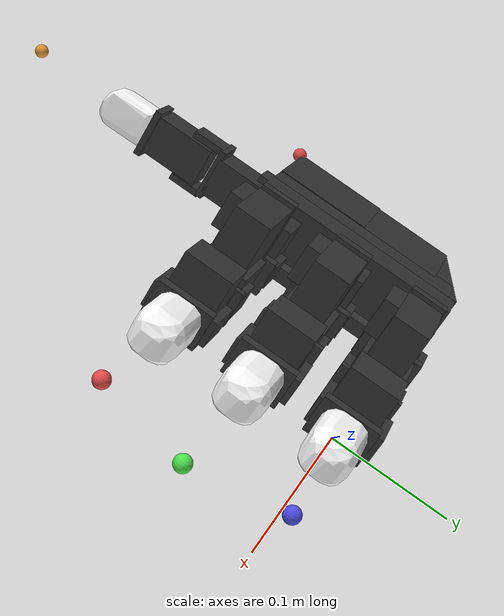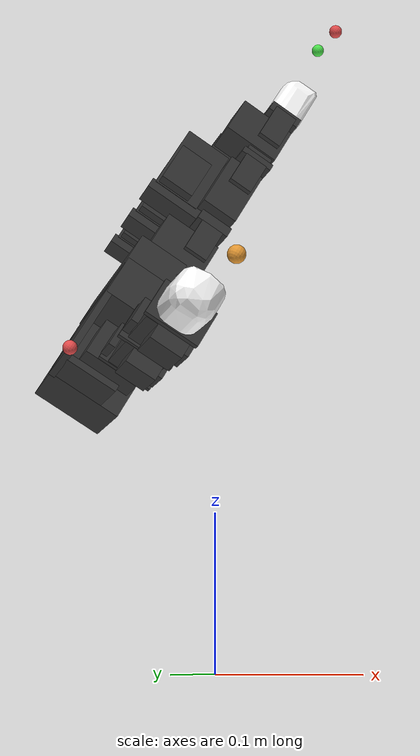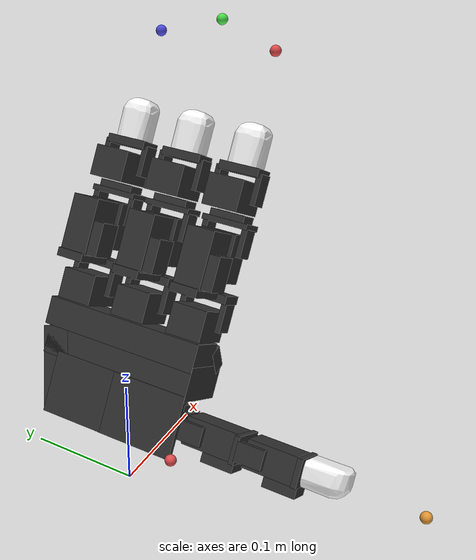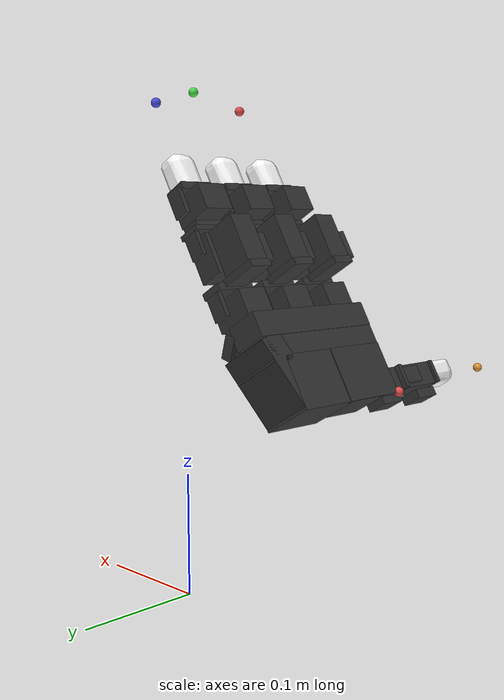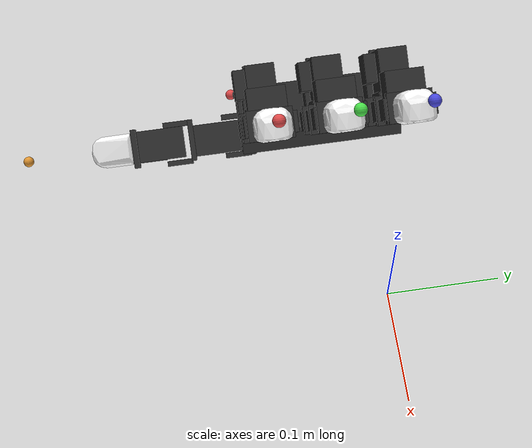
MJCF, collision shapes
<mujoco model="leap_lh">
  <compiler angle="radian" meshdir="./assets/" autolimits="true"/>

  <asset>
    <material name="black" rgba="0.2 0.2 0.2 1"/>
    <material name="white" rgba="1 1 1 1"/>

    <mesh name="palm" file="palm_left.obj"/>
    <mesh name="base" file="base.obj"/>
    <mesh name="proximal" file="proximal.obj"/>
    <mesh name="medial" file="medial.obj"/>
    <mesh name="distal" file="distal.obj"/>
    <mesh name="tip" file="tip.obj"/>
    <mesh name="thumb_mp_left" file="thumb_mp_left.obj"/>
    <mesh name="thumb_base" file="thumb_base.obj"/>
    <mesh name="thumb_proximal" file="thumb_proximal.obj"/>
    <mesh name="thumb_distal" file="thumb_distal.obj"/>
    <mesh name="thumb_tip" file="thumb_tip.obj"/>
  </asset>

  <!-- defaults -->
  <default>
    <!-- constraint stiffness -->
    <geom friction=".2"/>

    <!-- actuator defaults -->
    <motor ctrlrange="-10 10"/>
    <joint damping="0.001" armature="0.0048" frictionloss="0.006"/>

    <!-- geom class defaults -->
    <default class="visual">
      <geom group="2" type="mesh" contype="0" conaffinity="0" density="0" material="black"/>
    </default>
    <default class="collision">
      <geom group="3" material="black"/>
    </default>
    <default class="tip">
      <geom type="mesh" mesh="tip" friction="0.5" material="white"/>
    </default>
    <default class="thumb_tip">
      <geom type="mesh" mesh="thumb_tip" friction="0.5" material="white"/>
    </default>

    <!-- joint class defaults -->
    <default class="mcp">
      <joint pos="0 0 0" axis="0 0 -1" limited="true" range="-0.314 2.23"/>
    </default>
    <default class="rot">
      <joint pos="0 0 0" axis="0 0 -1" limited="true" range="-1.047 1.047"/>
    </default>
    <default class="pip">
      <joint pos="0 0 0" axis="0 0 -1" limited="true" range="0.0 1.885"/>
    </default>
    <default class="dip">
      <joint pos="0 0 0" axis="0 0 -1" limited="true" range="0.0 2.042"/>
    </default>
    <default class="thumb_cmc">
      <joint pos="0 0 0" axis="0 0 -1" limited="true" range="-2.094 0.349"/>
    </default>
    <default class="thumb_axl">
      <joint pos="0 0 0" axis="0 0 -1" limited="true" range="-2.094 0.349"/>
    </default>
    <default class="thumb_mcp">
      <joint pos="0 0 0" axis="0 0 -1" limited="true" range="-1.22 2.443"/>
    </default>
    <default class="thumb_ipl">
      <joint pos="0 0 0" axis="0 0 -1" limited="true" range="-1.34 1.88"/>
    </default>
  </default>

  <!-- collision filtering -->
  <contact>
    <!-- filter the palm from all other finger bodies except the tips -->
    <exclude body1="palm" body2="if_bs"/>
    <exclude body1="palm" body2="mf_bs"/>
    <exclude body1="palm" body2="rf_bs"/>
    <exclude body1="palm" body2="th_mp"/>

    <exclude body1="palm" body2="if_px"/>
    <exclude body1="palm" body2="mf_px"/>
    <exclude body1="palm" body2="rf_px"/>
    <exclude body1="palm" body2="th_bs"/>

    <exclude body1="palm" body2="if_md"/>
    <exclude body1="palm" body2="mf_md"/>
    <exclude body1="palm" body2="rf_md"/>
    <exclude body1="palm" body2="th_px"/>

    <!-- none of the base fingertip geoms can touch each other -->
    <exclude body1="if_bs" body2="mf_bs"/>
    <exclude body1="if_bs" body2="rf_bs"/>
    <exclude body1="mf_bs" body2="rf_bs"/>

    <exclude body1="th_mp" body2="if_bs"/>
    <exclude body1="th_mp" body2="mf_bs"/>
    <exclude body1="th_mp" body2="rf_bs"/>
  </contact>

  <!-- actuators -->
  <actuator>
    <!-- index -->
    <motor name="if_rot_act" joint="if_rot"/>
    <motor name="if_mcp_act" joint="if_mcp"/>
    <motor name="if_pip_act" joint="if_pip"/>
    <motor name="if_dip_act" joint="if_dip"/>

    <!-- middle -->
    <motor name="mf_rot_act" joint="mf_rot"/>
    <motor name="mf_mcp_act" joint="mf_mcp"/>
    <motor name="mf_pip_act" joint="mf_pip"/>
    <motor name="mf_dip_act" joint="mf_dip"/>

    <!-- ring -->
    <motor name="rf_rot_act" joint="rf_rot"/>
    <motor name="rf_mcp_act" joint="rf_mcp"/>
    <motor name="rf_pip_act" joint="rf_pip"/>
    <motor name="rf_dip_act" joint="rf_dip"/>

    <!-- thumb -->
    <motor name="th_cmc_act" joint="th_cmc"/>
    <motor name="th_axl_act" joint="th_axl"/>
    <motor name="th_mcp_act" joint="th_mcp"/>
    <motor name="th_ipl_act" joint="th_ipl"/>
  </actuator>

  <!-- sensors -->
  <sensor>
    <!-- index -->
    <jointpos name="if_mcp_sensor" joint="if_mcp"/>
    <jointpos name="if_rot_sensor" joint="if_rot"/>
    <jointpos name="if_pip_sensor" joint="if_pip"/>
    <jointpos name="if_dip_sensor" joint="if_dip"/>

    <!-- middle -->
    <jointpos name="mf_mcp_sensor" joint="mf_mcp"/>
    <jointpos name="mf_rot_sensor" joint="mf_rot"/>
    <jointpos name="mf_pip_sensor" joint="mf_pip"/>
    <jointpos name="mf_dip_sensor" joint="mf_dip"/>

    <!-- ring -->
    <jointpos name="rf_mcp_sensor" joint="rf_mcp"/>
    <jointpos name="rf_rot_sensor" joint="rf_rot"/>
    <jointpos name="rf_pip_sensor" joint="rf_pip"/>
    <jointpos name="rf_dip_sensor" joint="rf_dip"/>

    <!-- thumb -->
    <jointpos name="th_cmc_sensor" joint="th_cmc"/>
    <jointpos name="th_axl_sensor" joint="th_axl"/>
    <jointpos name="th_mcp_sensor" joint="th_mcp"/>
    <jointpos name="th_ipl_sensor" joint="th_ipl"/>

    <framelinvel objtype="site" objname="if_tip" name="if_tip_linvel"/>
    <frameangvel objtype="site" objname="if_tip" name="if_tip_angvel"/>
    <framelinvel objtype="site" objname="mf_tip" name="mf_tip_linvel"/>
    <frameangvel objtype="site" objname="mf_tip" name="mf_tip_angvel"/>
    <framelinvel objtype="site" objname="rf_tip" name="rf_tip_linvel"/>
    <frameangvel objtype="site" objname="rf_tip" name="rf_tip_angvel"/>
    <framelinvel objtype="site" objname="th_tip" name="th_tip_linvel"/>
    <frameangvel objtype="site" objname="th_tip" name="th_tip_angvel"/>
  </sensor>

  <worldbody>
    <body name="palm" pos="0 0 0.3" quat="0.866 0 -0.5 0">
      <site name="palm_root" pos="-0.1752 -0.117 0.0375" type="sphere" size="0.004" rgba="0.9 0.3 0.3 1"/>
      <!-- palm -->
      <inertial pos="-0.12546 -0.047739 0.015867" quat="0.423786 0.570263 -0.402758 0.577054" mass="0.170107"
        diaginertia="0.000293212 0.000220437 0.000129921"/>
      <geom name="palm_visual" pos="-0.0955 -0.117 0.0207" quat="9.38189e-07 9.38183e-07 0.707105 0.707109"
        class="visual" mesh="palm"/>
      <geom name="palm_collision_1" size="0.011 0.013 0.017" pos="-0.0848 -0.0996 0.0152" type="box" class="collision"/>
      <geom name="palm_collision_2" size="0.011 0.013 0.017" pos="-0.0848 -0.0546 0.0152" type="box" class="collision"/>
      <geom name="palm_collision_3" size="0.011 0.013 0.017" pos="-0.0848 -0.0096 0.0152" type="box" class="collision"/>
      <geom name="palm_collision_4" size="0.029 0.01 0.023" pos="-0.1428 -0.0126 0.0147" quat="0.989016 0 0 0.147806"
        type="box" class="collision"/>
      <geom name="palm_collision_5" size="0.01 0.06 0.015" pos="-0.1058 -0.0555 0.0232" type="box" class="collision"/>
      <geom name="palm_collision_6" size="0.005 0.06 0.01" pos="-0.1078 -0.0555 0.0002" quat="0.923956 0 0.382499 0"
        type="box" class="collision"/>
      <geom name="palm_collision_7" size="0.012 0.058 0.023" pos="-0.1238 -0.0575 0.0147" type="box" class="collision"/>
      <geom name="palm_collision_8" size="0.022 0.026 0.023" pos="-0.1538 -0.0375 0.0147" type="box" class="collision"/>
      <geom name="palm_collision_9" size="0.002 0.018 0.017" pos="-0.1738 -0.0815 0.0202" type="box" class="collision"/>
      <geom name="palm_collision_10" size="0.022 0.028 0.002" pos="-0.1538 -0.0875 0.0362" type="box" class="collision"/>

      <!-- index -->
      <body name="if_bs" pos="-0.0825 -0.0857 0.0078" quat="0.500003 0.5 0.5 -0.499997">
        <inertial pos="-0.022516 0.033882 0.016359" quat="0.388092 0.677951 -0.247713 0.573067" mass="0.0318499"
          diaginertia="1.26655e-05 1.16906e-05 5.22151e-06"/>
        <joint name="if_mcp" class="mcp"/>
        <geom name="if_bs_visual" pos="0.0084 0.0077 0.01465" quat="1 0 0 0" class="visual" mesh="base"/>
        <geom name="if_bs_collision_1" size="0.01 0.003 0.017" pos="0 0.018 0.0147" type="box" class="collision"/>
        <geom name="if_bs_collision_2" size="0.014 0.02 0.01" pos="-0.027 0.042 0.015" type="box" class="collision"/>
        <geom name="if_bs_collision_3" size="0.017 0.003 0.01" pos="-0.0262 0.02 0.0146" type="box" class="collision"/>
        <geom name="if_bs_collision_4" size="0.01 0.012 0.004" pos="-0.0295 0.035 0.029" type="box" class="collision"/>
        <geom name="if_bs_collision_5" size="0.007 0.01 0.002" pos="0 0.005 0.03" type="box" class="collision"/>
        <geom name="if_bs_collision_6" size="0.007 0.01 0.002" pos="0 0.005 -0.001" type="box" class="collision"/>

        <body name="if_px" pos="-0.0122 0.0381 0.0145" quat="0.500003 -0.5 -0.499997 0.5">
          <inertial pos="0.0075 -0.0002 -0.011" quat="0 0.707107 0 0.707107" mass="0.0231635"
            diaginertia="3.53628e-06 3.16566e-06 2.23912e-06"/>
          <joint name="if_rot" class="rot"/>
          <geom name="if_px_visual" pos="0.0096 0.0002 0.0007" quat="0.500003 -0.5 -0.5 -0.499997" class="visual"
            mesh="proximal"/>
          <geom name="if_px_collision" size="0.017 0.013 0.011" pos="0.0075 -0.0002 -0.011" type="box" class="collision"/>

          <body name="if_md" pos="0.015 0.0143 -0.013" quat="0.500003 0.5 -0.5 0.499997">
            <inertial pos="0.0054215 -0.029148 0.015" quat="0.687228 0.687228 0.166487 0.166487" mass="0.0267828"
              diaginertia="5.99359e-06 5.90656e-06 3.90534e-06"/>
            <joint name="if_pip" class="pip"/>
            <geom name="if_md_visual" pos="0.0211 -0.0084 0.0097" quat="2.67949e-08 -1 0 0" class="visual" mesh="medial"/>
            <geom name="if_md_collision_1" size="0.008 0.003 0.013" pos="0 -0.02 0.015" type="box" class="collision"/>
            <geom name="if_md_collision_2" size="0.01 0.002 0.017" pos="0 -0.016 0.015" type="box" class="collision"/>
            <geom name="if_md_collision_3" size="0.007 0.01 0.002" pos="0 -0.0045 0.03" type="box" class="collision"/>
            <geom name="if_md_collision_4" size="0.007 0.01 0.002" pos="0 -0.0045 0" type="box" class="collision"/>
            <geom name="if_md_collision_5" size="0.017 0.011 0.013" pos="0.0075 -0.035 0.015" type="box"
              class="collision"/>

            <body name="if_ds" pos="0 -0.0361 0.0002">
              <inertial pos="-0.0008794 -0.027019 0.014594" quat="0.702905 0.710643 -0.0212937 -0.0214203" mass="0.0115818"
                diaginertia="2.69177e-06 2.18893e-06 1.19567e-06"/>
              <joint name="if_dip" class="dip"/>
              <geom name="if_ds_visual" pos="0.0132 -0.0061 0.0144" quat="2.67949e-08 1 0 0" class="visual"
                mesh="distal"/>
              <geom name="if_ds_collision_1" size="0.01 0.003 0.015" pos="0 -0.017 0.015" type="box" class="collision"/>
              <geom name="if_ds_collision_2" size="0.007 0.011 0.002" pos="0 -0.006 0.03" type="box" class="collision"/>
              <geom name="if_ds_collision_3" size="0.007 0.011 0.002" pos="0 -0.006 -0.001" type="box" class="collision"/>

              <geom name="if_tip" class="tip"/>
              <site name="if_tip" pos="0.0 -0.1 0.015" quat="-0.5 -0.5 0.5 0.5" type="sphere" size="0.004"
                rgba="0.9 0.3 0.3 1"/>
            </body>

          </body>
        </body>
      </body>  <!--
      index -->

      <!-- middle -->
      <body name="mf_bs" pos="-0.0825 -0.0403 0.0078" quat="0.500003 0.5 0.5 -0.499997">
        <inertial pos="-0.022516 0.033882 0.016359" quat="0.388092 0.677951 -0.247713 0.573067" mass="0.0318499"
          diaginertia="1.26655e-05 1.16906e-05 5.22151e-06"/>
        <joint name="mf_mcp" class="mcp"/>
        <geom name="mf_bs_visual" pos="0.0084 0.0077 0.01465" quat="1 0 0 0" class="visual" mesh="base"/>
        <geom name="mf_bs_collision_1" size="0.01 0.003 0.017" pos="0 0.018 0.0147" type="box" class="collision"/>
        <geom name="mf_bs_collision_2" size="0.014 0.02 0.01" pos="-0.027 0.042 0.015" type="box" class="collision"/>
        <geom name="mf_bs_collision_3" size="0.017 0.003 0.01" pos="-0.0262 0.02 0.0146" type="box" class="collision"/>
        <geom name="mf_bs_collision_4" size="0.01 0.012 0.004" pos="-0.0295 0.035 0.029" type="box" class="collision"/>
        <geom name="mf_bs_collision_5" size="0.007 0.01 0.002" pos="0 0.005 0.03" type="box" class="collision"/>
        <geom name="mf_bs_collision_6" size="0.007 0.01 0.002" pos="0 0.005 -0.001" type="box" class="collision"/>

        <body name="mf_px" pos="-0.0122 0.0381 0.0145" quat="0.500003 -0.5 -0.499997 0.5">
          <inertial pos="0.0075 -0.0002 -0.011" quat="0 0.707107 0 0.707107" mass="0.0231635"
            diaginertia="3.53628e-06 3.16566e-06 2.23912e-06"/>
          <joint name="mf_rot" class="rot"/>
          <geom name="mf_px_visual" pos="0.0096 0.0003 0.0007" quat="0.500003 -0.5 -0.5 -0.499997" class="visual"
            mesh="proximal"/>
          <geom name="mf_px_collision" size="0.017 0.013 0.011" pos="0.0075 -0.0002 -0.011" type="box" class="collision"/>

          <body name="mf_md" pos="0.015 0.0143 -0.013" quat="0.500003 0.5 -0.5 0.499997">
            <inertial pos="0.0054215 -0.029148 0.015" quat="0.687228 0.687228 0.166487 0.166487" mass="0.0267828"
              diaginertia="5.99359e-06 5.90656e-06 3.90534e-06"/>
            <joint name="mf_pip" class="pip"/>
            <geom name="mf_md_visual" pos="0.0211 -0.0084 0.0097" quat="1.32679e-06 -1 0 0" class="visual" mesh="medial"/>
            <geom name="mf_md_collision_1" size="0.008 0.003 0.013" pos="0 -0.02 0.015" type="box" class="collision"/>
            <geom name="mf_md_collision_2" size="0.01 0.002 0.017" pos="0 -0.016 0.015" type="box" class="collision"/>
            <geom name="mf_md_collision_3" size="0.007 0.01 0.002" pos="0 -0.0045 0.03" type="box" class="collision"/>
            <geom name="mf_md_collision_4" size="0.007 0.01 0.002" pos="0 -0.0045 0" type="box" class="collision"/>
            <geom name="mf_md_collision_5" size="0.017 0.011 0.013" pos="0.0075 -0.035 0.015" type="box"
              class="collision"/>

            <body name="mf_ds" pos="0 -0.0361 0.0002">
              <inertial pos="-0.0008794 -0.027019 0.014594" quat="0.702905 0.710643 -0.0212937 -0.0214203" mass="0.0115818"
                diaginertia="2.69177e-06 2.18893e-06 1.19567e-06"/>
              <joint name="mf_dip" class="dip"/>
              <geom name="mf_ds_visual" pos="0.0132 -0.0061 0.0145" quat="1.32679e-06 1 0 0" class="visual"
                mesh="distal"/>
              <geom name="mf_ds_collision_1" size="0.01 0.003 0.015" pos="0 -0.017 0.015" type="box" class="collision"/>
              <geom name="mf_ds_collision_2" size="0.007 0.011 0.002" pos="0 -0.006 0.03" type="box" class="collision"/>
              <geom name="mf_ds_collision_3" size="0.007 0.011 0.002" pos="0 -0.006 -0.001" type="box" class="collision"/>

              <geom name="mf_tip" class="tip"/>
              <site name="mf_tip" pos="0.0 -0.115 0.015" quat="-0.5 -0.5 0.5 0.5" type="sphere" size="0.004"
                rgba="0.3 0.9 0.3 1"/>
            </body>

          </body>
        </body>
      </body>  <!--
      middle -->

      <!-- ring -->
      <body name="rf_bs" pos="-0.0825 0.0051 0.0078" quat="0.500003 0.5 0.5 -0.499997">
        <inertial pos="-0.022516 0.033882 0.016359" quat="0.388092 0.677951 -0.247713 0.573067" mass="0.0318499"
          diaginertia="1.26655e-05 1.16906e-05 5.22151e-06"/>
        <joint name="rf_mcp" class="mcp"/>
        <geom name="rf_bs_visual" pos="0.0084 0.0077 0.01465" quat="1 0 0 0" class="visual" mesh="base"/>
        <geom name="rf_bs_collision_1" size="0.01 0.003 0.017" pos="0 0.018 0.0147" type="box" class="collision"/>
        <geom name="rf_bs_collision_2" size="0.014 0.02 0.01" pos="-0.027 0.042 0.015" type="box" class="collision"/>
        <geom name="rf_bs_collision_3" size="0.017 0.003 0.01" pos="-0.0262 0.02 0.0146" type="box" class="collision"/>
        <geom name="rf_bs_collision_4" size="0.01 0.012 0.004" pos="-0.0295 0.035 0.029" type="box" class="collision"/>
        <geom name="rf_bs_collision_5" size="0.007 0.01 0.002" pos="0 0.005 0.03" type="box" class="collision"/>
        <geom name="rf_bs_collision_6" size="0.007 0.01 0.002" pos="0 0.005 -0.001" type="box" class="collision"/>

        <body name="rf_px" pos="-0.0122 0.0381 0.0145" quat="0.500003 -0.5 -0.499997 0.5">
          <inertial pos="0.0075 -0.0002 -0.011" quat="0 0.707107 0 0.707107" mass="0.0231635"
            diaginertia="3.53628e-06 3.16566e-06 2.23912e-06"/>
          <joint name="rf_rot" class="rot"/>
          <geom name="rf_px_visual" pos="0.0096 0.0003 0.0007" quat="0.500003 -0.5 -0.5 -0.499997" class="visual"
            mesh="proximal"/>
          <geom name="rf_px_collision" size="0.017 0.013 0.011" pos="0.0075 -0.0002 -0.011" type="box" class="collision"/>

          <body name="rf_md" pos="0.015 0.0143 -0.013" quat="0.500003 0.5 -0.5 0.499997">
            <inertial pos="0.0054215 -0.029148 0.015" quat="0.687228 0.687228 0.166487 0.166487" mass="0.0267828"
              diaginertia="5.99359e-06 5.90656e-06 3.90534e-06"/>
            <joint name="rf_pip" class="pip"/>
            <geom name="rf_md_visual" pos="0.0211 -0.0084 0.0097" quat="1.32679e-06 -1 0 0" class="visual" mesh="medial"/>
            <geom name="rf_md_collision_1" size="0.008 0.003 0.013" pos="0 -0.02 0.015" type="box" class="collision"/>
            <geom name="rf_md_collision_2" size="0.01 0.002 0.017" pos="0 -0.016 0.015" type="box" class="collision"/>
            <geom name="rf_md_collision_3" size="0.007 0.01 0.002" pos="0 -0.0045 0.03" type="box" class="collision"/>
            <geom name="rf_md_collision_4" size="0.007 0.01 0.002" pos="0 -0.0045 0" type="box" class="collision"/>
            <geom name="rf_md_collision_5" size="0.017 0.011 0.013" pos="0.0075 -0.035 0.015" type="box"
              class="collision"/>

            <body name="rf_ds" pos="0 -0.03609 0.0002">
              <inertial pos="-0.0008794 -0.027019 0.014594" quat="0.702905 0.710643 -0.0212937 -0.0214203" mass="0.0115818"
                diaginertia="2.69177e-06 2.18893e-06 1.19567e-06"/>
              <joint name="rf_dip" class="dip"/>
              <geom name="rf_ds_visual" pos="0.0132 -0.0061 0.0145" quat="1.32679e-06 1 0 0" class="visual"
                mesh="distal"/>
              <geom name="rf_ds_collision_1" size="0.01 0.003 0.015" pos="0 -0.017 0.015" type="box" class="collision"/>
              <geom name="rf_ds_collision_2" size="0.007 0.011 0.002" pos="0 -0.006 0.03" type="box" class="collision"/>
              <geom name="rf_ds_collision_3" size="0.007 0.011 0.002" pos="0 -0.006 -0.001" type="box" class="collision"/>

              <geom name="rf_tip" class="tip"/>
              <site name="rf_tip" pos="0.0 -0.1 0.015" quat="-0.5 -0.5 0.5 0.5" type="sphere" size="0.004"
                rgba="0.3 0.3 0.9 1"/>
            </body>

          </body>
        </body>
      </body>  <!--
      ring -->

      <!-- thumb -->
      <body name="th_mp" pos="-0.1448 -0.09 0.0049" quat="0.707109 0 0.707105 0">
        <inertial pos="-0.0069 0 -0.0109" quat="0 0.707107 0 0.707107" mass="0.0231635"
          diaginertia="3.53628e-06 3.16566e-06 2.23912e-06"/>
        <joint name="th_cmc" class="thumb_cmc"/>
        <geom name="th_mp_visual" pos="0.0439 0.0068 0.02146" quat="0.707109 0.707105 0 0" class="visual"
          mesh="thumb_mp_left"/>
        <geom name="th_mp_collision" size="0.017 0.013 0.011" pos="-0.0069 0 -0.0109" type="box" class="collision"/>

        <body name="th_bs" pos="0 -0.0143 -0.013" quat="0.500003 -0.5 -0.5 -0.499997">
          <inertial pos="0 0 -0.0070806" quat="0.707107 0.707107 0 0" mass="0.00217158"
            diaginertia="4.48301e-07 3.87338e-07 1.55746e-07"/>
          <joint name="th_axl" class="thumb_axl"/>
          <geom name="th_bs_visual" pos="0.01196 0 -0.0158" quat="0.707109 0.707105 0 0" class="visual"
            mesh="thumb_base"/>
          <geom name="th_bs_collision_1" size="0.009 0.0165 0.002" pos="0 0 -0.0015" type="box" class="collision"/>
          <geom name="th_bs_collision_2" size="0.007 0.002 0.01" pos="0 -0.015 -0.013" type="box" class="collision"/>
          <geom name="th_bs_collision_3" size="0.007 0.002 0.01" pos="0 0.015 -0.013" type="box" class="collision"/>

          <body name="th_px" pos="0 0.0145 -0.017" quat="0.707109 -0.707105 0 0">
            <inertial pos="-0.0020593 0.015912 -0.013733" quat="0.698518 0.697382 -0.104933 0.121324" mass="0.0275067"
              diaginertia="7.14526e-06 6.75111e-06 3.1575e-06"/>
            <joint name="th_mcp" class="thumb_mcp"/>
            <geom name="th_px_visual" pos="0.0439 0.0579 -0.0086" quat="1 0 0 0" class="visual" mesh="thumb_proximal"/>
            <geom name="th_px_collision_1" size="0.01 0.02 0.012" pos="0 0.0105 -0.014" type="box" class="collision"/>
            <geom name="th_px_collision_2" size="0.01 0.002 0.016" pos="0 0.031 -0.015" type="box" class="collision"/>
            <geom name="th_px_collision_3" size="0.007 0.01 0.002" pos="0 0.042 0.001" type="box" class="collision"/>
            <geom name="th_px_collision_4" size="0.007 0.01 0.002" pos="0 0.042 -0.029" type="box" class="collision"/>
            <geom name="th_px_collision_5" size="0.005 0.012 0.009" pos="-0.0135 0.0175 -0.011656" type="box"
              class="collision"/>

            <body name="th_ds" pos="0 0.0466 0.0002" quat="1.32679e-06 0 0 1">
              <inertial pos="0.00096191 -0.024203 -0.014419" quat="0.35287 0.311272 -0.632839 0.614904" mass="0.0354692"
                diaginertia="1.50991e-05 1.47682e-05 3.41181e-06"/>
              <joint name="th_ipl" class="thumb_ipl"/>
              <geom name="th_ds_visual" pos="0.0625 0.0784 0.0489" quat="1 0 0 0" class="visual" mesh="thumb_distal"/>
              <geom name="th_ds_collision_1" size="0.01 0.018 0.012" pos="0 -0.0085 -0.015" type="box" class="collision"/>
              <geom name="th_ds_collision_2" size="0.01 0.002 0.015" pos="0 -0.029 -0.014" type="box" class="collision"/>
              <geom name="th_ds_collision_3" size="0.004 0.012 0.009" pos="0.015 -0.0175 -0.0115" type="box"
                class="collision"/>

              <geom name="th_tip" class="thumb_tip"/>
              <site name="th_tip" pos="0.0 -0.112 -0.015" quat="-0.5 -0.5 0.5 0.5" type="sphere" size="0.004"
                rgba="0.9 0.6 0.2 1"/>
            </body>

          </body>
        </body>
      </body>  <!--
      thumb -->

    </body>  <!--
    palm -->
  </worldbody>
</mujoco>
